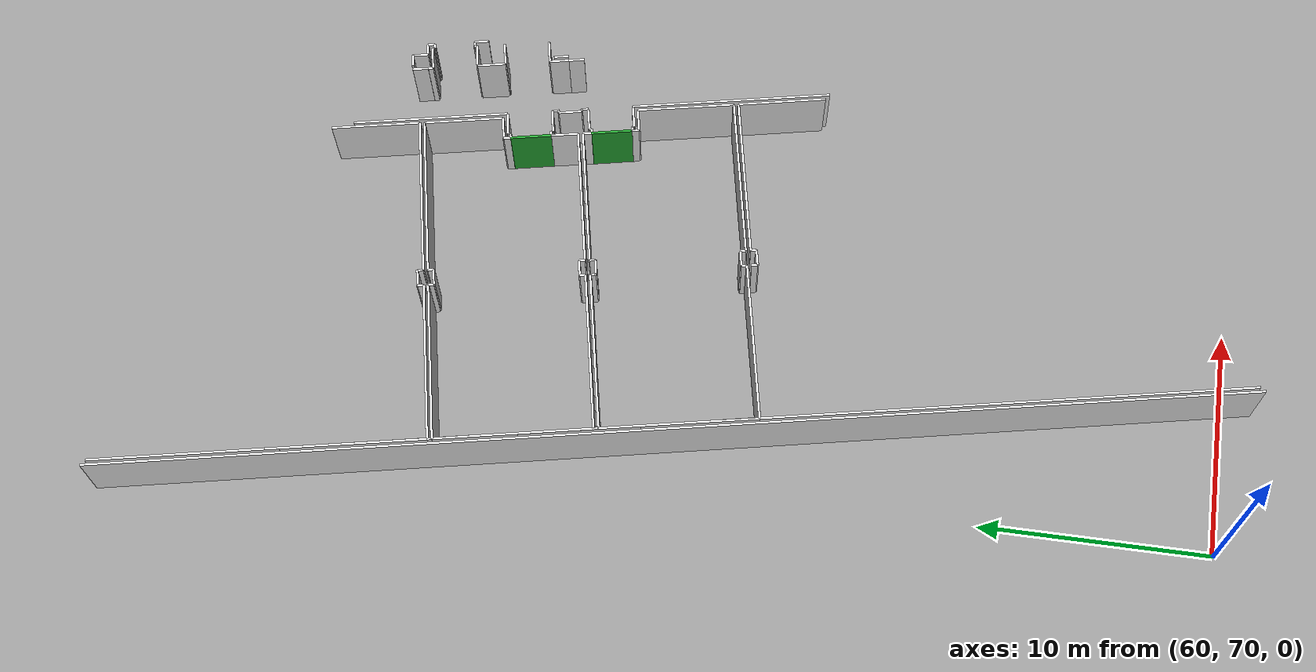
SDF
<sdf version="1.6">
 <world name="default">
  <model name="wall_74.4_101.3_1.5">
   <static>true</static>
   <pose>74.38000000000466 101.26000000000931 1.5 0 0 -1.3690339825092397</pose>
   <link name="link">
    <visual name="visual">
     <geometry><box><size>1.796440926065282 0.1 3</size></box></geometry>
     <material>
      <script><uri>file://media/materials/scripts/gazebo.material</uri><name>Gazebo/Green</name></script>
     </material>
    </visual>
    <collision name="collision"><geometry><box><size>1.796440926065282 0.1 3</size></box></geometry></collision>
   </link>
  </model>
  <model name="wall_75.1_97.8_1.5">
   <static>true</static>
   <pose>75.0800000000163 97.75 1.5 0 0 -1.3690339824572944</pose>
   <link name="link">
    <visual name="visual">
     <geometry><box><size>1.7964409256090668 0.1 3</size></box></geometry>
     <material>
      <script><uri>file://media/materials/scripts/gazebo.material</uri><name>Gazebo/Green</name></script>
     </material>
    </visual>
    <collision name="collision"><geometry><box><size>1.7964409256090668 0.1 3</size></box></geometry></collision>
   </link>
  </model>
  <model name="wall_59.2_106.7_1.5">
   <static>true</static>
   <pose>59.20999999999185 106.70499999984168 1.5 0 0 -1.3748471066906804</pose>
   <link name="link">
    <visual name="visual">
     <geometry><box><size>6.779741882902312 0.1 3</size></box></geometry>
     <material>
      <script><uri>file://media/materials/scripts/gazebo.material</uri><name>Gazebo/White</name></script>
     </material>
    </visual>
    <collision name="collision"><geometry><box><size>6.779741882902312 0.1 3</size></box></geometry></collision>
   </link>
  </model>
  <model name="wall_63.3_104.1_1.5">
   <static>true</static>
   <pose>63.304999999993015 104.05499999993481 1.5 0 0 0.19403422798469777</pose>
   <link name="link">
    <visual name="visual">
     <geometry><box><size>7.001385577168813 0.1 3</size></box></geometry>
     <material>
      <script><uri>file://media/materials/scripts/gazebo.material</uri><name>Gazebo/White</name></script>
     </material>
    </visual>
    <collision name="collision"><geometry><box><size>7.001385577168813 0.1 3</size></box></geometry></collision>
   </link>
  </model>
  <model name="wall_66.7_104.9_1.5">
   <static>true</static>
   <pose>66.71499999999651 104.85499999998137 1.5 0 0 1.7681918866000021</pose>
   <link name="link">
    <visual name="visual">
     <geometry><box><size>0.25495097567735614 0.1 3</size></box></geometry>
     <material>
      <script><uri>file://media/materials/scripts/gazebo.material</uri><name>Gazebo/White</name></script>
     </material>
    </visual>
    <collision name="collision"><geometry><box><size>0.25495097567735614 0.1 3</size></box></geometry></collision>
   </link>
  </model>
  <model name="wall_67.0_105.1_1.5">
   <static>true</static>
   <pose>67.03500000000349 105.05000000004657 1.5 0 0 0.20018106814672346</pose>
   <link name="link">
    <visual name="visual">
     <geometry><box><size>0.7040596565914858 0.1 3</size></box></geometry>
     <material>
      <script><uri>file://media/materials/scripts/gazebo.material</uri><name>Gazebo/White</name></script>
     </material>
    </visual>
    <collision name="collision"><geometry><box><size>0.7040596565914858 0.1 3</size></box></geometry></collision>
   </link>
  </model>
  <model name="wall_67.4_105.0_1.5">
   <static>true</static>
   <pose>67.40499999999884 104.99500000011176 1.5 0 0 -1.373400766989791</pose>
   <link name="link">
    <visual name="visual">
     <geometry><box><size>0.25495097567735614 0.1 3</size></box></geometry>
     <material>
      <script><uri>file://media/materials/scripts/gazebo.material</uri><name>Gazebo/White</name></script>
     </material>
    </visual>
    <collision name="collision"><geometry><box><size>0.25495097567735614 0.1 3</size></box></geometry></collision>
   </link>
  </model>
  <model name="wall_70.9_105.6_1.5">
   <static>true</static>
   <pose>70.9199999999837 105.56000000005588 1.5 0 0 0.19519049174407682</pose>
   <link name="link">
    <visual name="visual">
     <geometry><box><size>7.115110680757645 0.1 3</size></box></geometry>
     <material>
      <script><uri>file://media/materials/scripts/gazebo.material</uri><name>Gazebo/White</name></script>
     </material>
    </visual>
    <collision name="collision"><geometry><box><size>7.115110680757645 0.1 3</size></box></geometry></collision>
   </link>
  </model>
  <model name="wall_74.0_108.2_1.5">
   <static>true</static>
   <pose>74.02999999999884 108.15500000002794 1.5 0 0 1.7676870911146996</pose>
   <link name="link">
    <visual name="visual">
     <geometry><box><size>3.8850611321253985 0.1 3</size></box></geometry>
     <material>
      <script><uri>file://media/materials/scripts/gazebo.material</uri><name>Gazebo/White</name></script>
     </material>
    </visual>
    <collision name="collision"><geometry><box><size>3.8850611321253985 0.1 3</size></box></geometry></collision>
   </link>
  </model>
  <model name="wall_74.2_102.3_1.5">
   <static>true</static>
   <pose>74.17500000001746 102.29000000003725 1.5 0 0 1.7359450042724507</pose>
   <link name="link">
    <visual name="visual">
     <geometry><box><size>0.30413812632926696 0.1 3</size></box></geometry>
     <material>
      <script><uri>file://media/materials/scripts/gazebo.material</uri><name>Gazebo/White</name></script>
     </material>
    </visual>
    <collision name="collision"><geometry><box><size>0.30413812632926696 0.1 3</size></box></geometry></collision>
   </link>
  </model>
  <model name="wall_74.6_102.5_1.5">
   <static>true</static>
   <pose>74.63500000000931 102.53499999991618 1.5 0 0 0.19342732666080192</pose>
   <link name="link">
    <visual name="visual">
     <geometry><box><size>0.9884331034139654 0.1 3</size></box></geometry>
     <material>
      <script><uri>file://media/materials/scripts/gazebo.material</uri><name>Gazebo/White</name></script>
     </material>
    </visual>
    <collision name="collision"><geometry><box><size>0.9884331034139654 0.1 3</size></box></geometry></collision>
   </link>
  </model>
  <model name="wall_74.8_104.3_1.5">
   <static>true</static>
   <pose>74.77999999999884 104.33999999985099 1.5 0 0 1.7670670277288347</pose>
   <link name="link">
    <visual name="visual">
     <geometry><box><size>3.4869470887125433 0.1 3</size></box></geometry>
     <material>
      <script><uri>file://media/materials/scripts/gazebo.material</uri><name>Gazebo/White</name></script>
     </material>
    </visual>
    <collision name="collision"><geometry><box><size>3.4869470887125433 0.1 3</size></box></geometry></collision>
   </link>
  </model>
  <model name="wall_71.0_105.4_1.5">
   <static>true</static>
   <pose>70.9549999999872 105.36499999999069 1.5 0 0 -2.9475101683600555</pose>
   <link name="link">
    <visual name="visual">
     <geometry><box><size>7.1033653995449395 0.1 3</size></box></geometry>
     <material>
      <script><uri>file://media/materials/scripts/gazebo.material</uri><name>Gazebo/White</name></script>
     </material>
    </visual>
    <collision name="collision"><geometry><box><size>7.1033653995449395 0.1 3</size></box></geometry></collision>
   </link>
  </model>
  <model name="wall_67.5_104.6_1.5">
   <static>true</static>
   <pose>67.49499999999534 104.55500000016764 1.5 0 0 -1.3734007667659154</pose>
   <link name="link">
    <visual name="visual">
     <geometry><box><size>0.2549509756887716 0.1 3</size></box></geometry>
     <material>
      <script><uri>file://media/materials/scripts/gazebo.material</uri><name>Gazebo/White</name></script>
     </material>
    </visual>
    <collision name="collision"><geometry><box><size>0.2549509756887716 0.1 3</size></box></geometry></collision>
   </link>
  </model>
  <model name="wall_67.2_104.4_1.5">
   <static>true</static>
   <pose>67.17500000001746 104.36499999999069 1.5 0 0 -2.9553698126839456</pose>
   <link name="link">
    <visual name="visual">
     <geometry><box><size>0.7021395873294909 0.1 3</size></box></geometry>
     <material>
      <script><uri>file://media/materials/scripts/gazebo.material</uri><name>Gazebo/White</name></script>
     </material>
    </visual>
    <collision name="collision"><geometry><box><size>0.7021395873294909 0.1 3</size></box></geometry></collision>
   </link>
  </model>
  <model name="wall_66.8_104.4_1.5">
   <static>true</static>
   <pose>66.80500000002212 104.4199999999255 1.5 0 0 1.7761917157522207</pose>
   <link name="link">
    <visual name="visual">
     <geometry><box><size>0.24515301365907008 0.1 3</size></box></geometry>
     <material>
      <script><uri>file://media/materials/scripts/gazebo.material</uri><name>Gazebo/White</name></script>
     </material>
    </visual>
    <collision name="collision"><geometry><box><size>0.24515301365907008 0.1 3</size></box></geometry></collision>
   </link>
  </model>
  <model name="wall_63.3_103.9_1.5">
   <static>true</static>
   <pose>63.345000000001164 103.86499999999069 1.5 0 0 -2.9475584256066987</pose>
   <link name="link">
    <visual name="visual">
     <geometry><box><size>7.001385577225929 0.1 3</size></box></geometry>
     <material>
      <script><uri>file://media/materials/scripts/gazebo.material</uri><name>Gazebo/White</name></script>
     </material>
    </visual>
    <collision name="collision"><geometry><box><size>7.001385577225929 0.1 3</size></box></geometry></collision>
   </link>
  </model>
  <model name="wall_60.6_99.9_1.5">
   <static>true</static>
   <pose>60.57499999998254 99.86999999987893 1.5 0 0 -1.3731111637109774</pose>
   <link name="link">
    <visual name="visual">
     <geometry><box><size>6.771890430431879 0.1 3</size></box></geometry>
     <material>
      <script><uri>file://media/materials/scripts/gazebo.material</uri><name>Gazebo/White</name></script>
     </material>
    </visual>
    <collision name="collision"><geometry><box><size>6.771890430431879 0.1 3</size></box></geometry></collision>
   </link>
  </model>
  <model name="wall_64.7_97.2_1.5">
   <static>true</static>
   <pose>64.67499999998836 97.2249999998603 1.5 0 0 0.19403422798469777</pose>
   <link name="link">
    <visual name="visual">
     <geometry><box><size>7.001385577168813 0.1 3</size></box></geometry>
     <material>
      <script><uri>file://media/materials/scripts/gazebo.material</uri><name>Gazebo/White</name></script>
     </material>
    </visual>
    <collision name="collision"><geometry><box><size>7.001385577168813 0.1 3</size></box></geometry></collision>
   </link>
  </model>
  <model name="wall_68.1_98.0_1.5">
   <static>true</static>
   <pose>68.08499999999185 98.02000000001863 1.5 0 0 1.7761917157522207</pose>
   <link name="link">
    <visual name="visual">
     <geometry><box><size>0.24515301365907008 0.1 3</size></box></geometry>
     <material>
      <script><uri>file://media/materials/scripts/gazebo.material</uri><name>Gazebo/White</name></script>
     </material>
    </visual>
    <collision name="collision"><geometry><box><size>0.24515301365907008 0.1 3</size></box></geometry></collision>
   </link>
  </model>
  <model name="wall_68.4_98.2_1.5">
   <static>true</static>
   <pose>68.40499999999884 98.20999999996275 1.5 0 0 0.20018106749853645</pose>
   <link name="link">
    <visual name="visual">
     <geometry><box><size>0.7040596564988906 0.1 3</size></box></geometry>
     <material>
      <script><uri>file://media/materials/scripts/gazebo.material</uri><name>Gazebo/White</name></script>
     </material>
    </visual>
    <collision name="collision"><geometry><box><size>0.7040596564988906 0.1 3</size></box></geometry></collision>
   </link>
  </model>
  <model name="wall_68.8_98.2_1.5">
   <static>true</static>
   <pose>68.76999999998952 98.15499999979511 1.5 0 0 -1.412141064690222</pose>
   <link name="link">
    <visual name="visual">
     <geometry><box><size>0.2531797780201326 0.1 3</size></box></geometry>
     <material>
      <script><uri>file://media/materials/scripts/gazebo.material</uri><name>Gazebo/White</name></script>
     </material>
    </visual>
    <collision name="collision"><geometry><box><size>0.2531797780201326 0.1 3</size></box></geometry></collision>
   </link>
  </model>
  <model name="wall_71.8_98.6_1.5">
   <static>true</static>
   <pose>71.78999999997905 98.625 1.5 0 0 0.1957924833792323</pose>
   <link name="link">
    <visual name="visual">
     <geometry><box><size>6.11687011477073 0.1 3</size></box></geometry>
     <material>
      <script><uri>file://media/materials/scripts/gazebo.material</uri><name>Gazebo/White</name></script>
     </material>
    </visual>
    <collision name="collision"><geometry><box><size>6.11687011477073 0.1 3</size></box></geometry></collision>
   </link>
  </model>
  <model name="wall_74.7_99.8_1.5">
   <static>true</static>
   <pose>74.67499999998836 99.80000000004657 1.5 0 0 1.76653351340899</pose>
   <link name="link">
    <visual name="visual">
     <geometry><box><size>1.1825819207381807 0.1 3</size></box></geometry>
     <material>
      <script><uri>file://media/materials/scripts/gazebo.material</uri><name>Gazebo/White</name></script>
     </material>
    </visual>
    <collision name="collision"><geometry><box><size>1.1825819207381807 0.1 3</size></box></geometry></collision>
   </link>
  </model>
  <model name="wall_74.9_98.8_1.5">
   <static>true</static>
   <pose>74.86500000001979 98.81999999983236 1.5 0 0 1.7529646373378367</pose>
   <link name="link">
    <visual name="visual">
     <geometry><box><size>0.3863935816185891 0.1 3</size></box></geometry>
     <material>
      <script><uri>file://media/materials/scripts/gazebo.material</uri><name>Gazebo/White</name></script>
     </material>
    </visual>
    <collision name="collision"><geometry><box><size>0.3863935816185891 0.1 3</size></box></geometry></collision>
   </link>
  </model>
  <model name="wall_71.8_98.4_1.5">
   <static>true</static>
   <pose>71.8300000000163 98.4199999999255 1.5 0 0 -2.947404266883771</pose>
   <link name="link">
    <visual name="visual">
     <geometry><box><size>6.114932542497641 0.1 3</size></box></geometry>
     <material>
      <script><uri>file://media/materials/scripts/gazebo.material</uri><name>Gazebo/White</name></script>
     </material>
    </visual>
    <collision name="collision"><geometry><box><size>6.114932542497641 0.1 3</size></box></geometry></collision>
   </link>
  </model>
  <model name="wall_68.9_97.7_1.5">
   <static>true</static>
   <pose>68.85500000001048 97.70999999996275 1.5 0 0 -1.3654009378375724</pose>
   <link name="link">
    <visual name="visual">
     <geometry><box><size>0.24515301365907008 0.1 3</size></box></geometry>
     <material>
      <script><uri>file://media/materials/scripts/gazebo.material</uri><name>Gazebo/White</name></script>
     </material>
    </visual>
    <collision name="collision"><geometry><box><size>0.24515301365907008 0.1 3</size></box></geometry></collision>
   </link>
  </model>
  <model name="wall_68.5_97.5_1.5">
   <static>true</static>
   <pose>68.54000000000815 97.52499999990687 1.5 0 0 -2.952695472868832</pose>
   <link name="link">
    <visual name="visual">
     <geometry><box><size>0.6923149571989928 0.1 3</size></box></geometry>
     <material>
      <script><uri>file://media/materials/scripts/gazebo.material</uri><name>Gazebo/White</name></script>
     </material>
    </visual>
    <collision name="collision"><geometry><box><size>0.6923149571989928 0.1 3</size></box></geometry></collision>
   </link>
  </model>
  <model name="wall_68.2_97.6_1.5">
   <static>true</static>
   <pose>68.17500000001746 97.5800000000745 1.5 0 0 1.7761917157522207</pose>
   <link name="link">
    <visual name="visual">
     <geometry><box><size>0.24515301365907008 0.1 3</size></box></geometry>
     <material>
      <script><uri>file://media/materials/scripts/gazebo.material</uri><name>Gazebo/White</name></script>
     </material>
    </visual>
    <collision name="collision"><geometry><box><size>0.24515301365907008 0.1 3</size></box></geometry></collision>
   </link>
  </model>
  <model name="wall_64.7_97.0_1.5">
   <static>true</static>
   <pose>64.71500000002561 97.02000000001863 1.5 0 0 -2.946157326410305</pose>
   <link name="link">
    <visual name="visual">
     <geometry><box><size>7.003320641013659 0.1 3</size></box></geometry>
     <material>
      <script><uri>file://media/materials/scripts/gazebo.material</uri><name>Gazebo/White</name></script>
     </material>
    </visual>
    <collision name="collision"><geometry><box><size>7.003320641013659 0.1 3</size></box></geometry></collision>
   </link>
  </model>
  <model name="wall_61.9_93.0_1.5">
   <static>true</static>
   <pose>61.94000000000233 93.02000000001863 1.5 0 0 -1.3745595149757288</pose>
   <link name="link">
    <visual name="visual">
     <geometry><box><size>6.769933529615509 0.1 3</size></box></geometry>
     <material>
      <script><uri>file://media/materials/scripts/gazebo.material</uri><name>Gazebo/White</name></script>
     </material>
    </visual>
    <collision name="collision"><geometry><box><size>6.769933529615509 0.1 3</size></box></geometry></collision>
   </link>
  </model>
  <model name="wall_66.0_90.4_1.5">
   <static>true</static>
   <pose>66.03499999997439 90.38000000012107 1.5 0 0 0.1954353271142626</pose>
   <link name="link">
    <visual name="visual">
     <geometry><box><size>7.0033206409232305 0.1 3</size></box></geometry>
     <material>
      <script><uri>file://media/materials/scripts/gazebo.material</uri><name>Gazebo/White</name></script>
     </material>
    </visual>
    <collision name="collision"><geometry><box><size>7.0033206409232305 0.1 3</size></box></geometry></collision>
   </link>
  </model>
  <model name="wall_69.4_91.2_1.5">
   <static>true</static>
   <pose>69.44999999998254 91.17999999993481 1.5 0 0 1.7359450042881825</pose>
   <link name="link">
    <visual name="visual">
     <geometry><box><size>0.2433105009696346 0.1 3</size></box></geometry>
     <material>
      <script><uri>file://media/materials/scripts/gazebo.material</uri><name>Gazebo/White</name></script>
     </material>
    </visual>
    <collision name="collision"><geometry><box><size>0.2433105009696346 0.1 3</size></box></geometry></collision>
   </link>
  </model>
  <model name="wall_69.8_91.4_1.5">
   <static>true</static>
   <pose>69.76999999998952 91.36499999999069 1.5 0 0 0.1888971813816114</pose>
   <link name="link">
    <visual name="visual">
     <geometry><box><size>0.6923149572864328 0.1 3</size></box></geometry>
     <material>
      <script><uri>file://media/materials/scripts/gazebo.material</uri><name>Gazebo/White</name></script>
     </material>
    </visual>
    <collision name="collision"><geometry><box><size>0.6923149572864328 0.1 3</size></box></geometry></collision>
   </link>
  </model>
  <model name="wall_70.1_91.3_1.5">
   <static>true</static>
   <pose>70.13499999998021 91.31000000005588 1.5 0 0 -1.3654009378375724</pose>
   <link name="link">
    <visual name="visual">
     <geometry><box><size>0.24515301365907008 0.1 3</size></box></geometry>
     <material>
      <script><uri>file://media/materials/scripts/gazebo.material</uri><name>Gazebo/White</name></script>
     </material>
    </visual>
    <collision name="collision"><geometry><box><size>0.24515301365907008 0.1 3</size></box></geometry></collision>
   </link>
  </model>
  <model name="wall_73.6_91.9_1.5">
   <static>true</static>
   <pose>73.64499999998952 91.87999999988824 1.5 0 0 0.1954634617685791</pose>
   <link name="link">
    <visual name="visual">
     <geometry><box><size>7.105300838114702 0.1 3</size></box></geometry>
     <material>
      <script><uri>file://media/materials/scripts/gazebo.material</uri><name>Gazebo/White</name></script>
     </material>
    </visual>
    <collision name="collision"><geometry><box><size>7.105300838114702 0.1 3</size></box></geometry></collision>
   </link>
  </model>
  <model name="wall_76.7_94.7_1.5">
   <static>true</static>
   <pose>76.71499999999651 94.6699999999255 1.5 0 0 1.765901464626056</pose>
   <link name="link">
    <visual name="visual">
     <geometry><box><size>4.281226459975188 0.1 3</size></box></geometry>
     <material>
      <script><uri>file://media/materials/scripts/gazebo.material</uri><name>Gazebo/White</name></script>
     </material>
    </visual>
    <collision name="collision"><geometry><box><size>4.281226459975188 0.1 3</size></box></geometry></collision>
   </link>
  </model>
  <model name="wall_75.8_96.7_1.5">
   <static>true</static>
   <pose>75.80999999999767 96.6699999999255 1.5 0 0 -2.9402755450289626</pose>
   <link name="link">
    <visual name="visual">
     <geometry><box><size>1.0001999800229942 0.1 3</size></box></geometry>
     <material>
      <script><uri>file://media/materials/scripts/gazebo.material</uri><name>Gazebo/White</name></script>
     </material>
    </visual>
    <collision name="collision"><geometry><box><size>1.0001999800229942 0.1 3</size></box></geometry></collision>
   </link>
  </model>
  <model name="wall_75.3_96.7_1.5">
   <static>true</static>
   <pose>75.29000000000815 96.71999999997206 1.5 0 0 1.7681918864582145</pose>
   <link name="link">
    <visual name="visual">
     <geometry><box><size>0.30594117108908153 0.1 3</size></box></geometry>
     <material>
      <script><uri>file://media/materials/scripts/gazebo.material</uri><name>Gazebo/White</name></script>
     </material>
    </visual>
    <collision name="collision"><geometry><box><size>0.30594117108908153 0.1 3</size></box></geometry></collision>
   </link>
  </model>
  <model name="wall_77.6_90.5_1.5">
   <static>true</static>
   <pose>77.55499999999302 90.46500000008382 1.5 0 0 1.7702100473778921</pose>
   <link name="link">
    <visual name="visual">
     <geometry><box><size>3.88702971437761 0.1 3</size></box></geometry>
     <material>
      <script><uri>file://media/materials/scripts/gazebo.material</uri><name>Gazebo/White</name></script>
     </material>
    </visual>
    <collision name="collision"><geometry><box><size>3.88702971437761 0.1 3</size></box></geometry></collision>
   </link>
  </model>
  <model name="wall_73.7_91.7_1.5">
   <static>true</static>
   <pose>73.68499999999767 91.68000000016764 1.5 0 0 -2.946129191819623</pose>
   <link name="link">
    <visual name="visual">
     <geometry><box><size>7.105300838057603 0.1 3</size></box></geometry>
     <material>
      <script><uri>file://media/materials/scripts/gazebo.material</uri><name>Gazebo/White</name></script>
     </material>
    </visual>
    <collision name="collision"><geometry><box><size>7.105300838057603 0.1 3</size></box></geometry></collision>
   </link>
  </model>
  <model name="wall_70.2_90.9_1.5">
   <static>true</static>
   <pose>70.22500000000582 90.87000000011176 1.5 0 0 -1.3654009378375724</pose>
   <link name="link">
    <visual name="visual">
     <geometry><box><size>0.24515301365907008 0.1 3</size></box></geometry>
     <material>
      <script><uri>file://media/materials/scripts/gazebo.material</uri><name>Gazebo/White</name></script>
     </material>
    </visual>
    <collision name="collision"><geometry><box><size>0.24515301365907008 0.1 3</size></box></geometry></collision>
   </link>
  </model>
  <model name="wall_69.9_90.7_1.5">
   <static>true</static>
   <pose>69.90499999999884 90.67999999993481 1.5 0 0 -2.9414115854430696</pose>
   <link name="link">
    <visual name="visual">
     <geometry><box><size>0.7040596565914858 0.1 3</size></box></geometry>
     <material>
      <script><uri>file://media/materials/scripts/gazebo.material</uri><name>Gazebo/White</name></script>
     </material>
    </visual>
    <collision name="collision"><geometry><box><size>0.7040596565914858 0.1 3</size></box></geometry></collision>
   </link>
  </model>
  <model name="wall_69.5_90.7_1.5">
   <static>true</static>
   <pose>69.53500000000349 90.73999999999069 1.5 0 0 1.7607846144977208</pose>
   <link name="link">
    <visual name="visual">
     <geometry><box><size>0.2647640461330629 0.1 3</size></box></geometry>
     <material>
      <script><uri>file://media/materials/scripts/gazebo.material</uri><name>Gazebo/White</name></script>
     </material>
    </visual>
    <collision name="collision"><geometry><box><size>0.2647640461330629 0.1 3</size></box></geometry></collision>
   </link>
  </model>
  <model name="wall_77.4_107.1_1.5">
   <static>true</static>
   <pose>77.44500000000698 107.0999999998603 1.5 0 0 0.2013171085608308</pose>
   <link name="link">
    <visual name="visual">
     <geometry><box><size>0.5000999900114971 0.1 3</size></box></geometry>
     <material>
      <script><uri>file://media/materials/scripts/gazebo.material</uri><name>Gazebo/White</name></script>
     </material>
    </visual>
    <collision name="collision"><geometry><box><size>0.5000999900114971 0.1 3</size></box></geometry></collision>
   </link>
  </model>
  <model name="wall_77.8_106.8_1.5">
   <static>true</static>
   <pose>77.76000000000931 106.81000000005588 1.5 0 0 -1.3677511094351602</pose>
   <link name="link">
    <visual name="visual">
     <geometry><box><size>0.6942621980193073 0.1 3</size></box></geometry>
     <material>
      <script><uri>file://media/materials/scripts/gazebo.material</uri><name>Gazebo/White</name></script>
     </material>
    </visual>
    <collision name="collision"><geometry><box><size>0.6942621980193073 0.1 3</size></box></geometry></collision>
   </link>
  </model>
  <model name="wall_78.1_106.5_1.5">
   <static>true</static>
   <pose>78.0800000000163 106.52000000001863 1.5 0 0 0.19739555913347878</pose>
   <link name="link">
    <visual name="visual">
     <geometry><box><size>0.5099019512862195 0.1 3</size></box></geometry>
     <material>
      <script><uri>file://media/materials/scripts/gazebo.material</uri><name>Gazebo/White</name></script>
     </material>
    </visual>
    <collision name="collision"><geometry><box><size>0.5099019512862195 0.1 3</size></box></geometry></collision>
   </link>
  </model>
  <model name="wall_78.4_106.4_1.5">
   <static>true</static>
   <pose>78.35500000001048 106.4199999999255 1.5 0 0 -1.4056476493173427</pose>
   <link name="link">
    <visual name="visual">
     <geometry><box><size>0.30413812632926696 0.1 3</size></box></geometry>
     <material>
      <script><uri>file://media/materials/scripts/gazebo.material</uri><name>Gazebo/White</name></script>
     </material>
    </visual>
    <collision name="collision"><geometry><box><size>0.30413812632926696 0.1 3</size></box></geometry></collision>
   </link>
  </model>
  <model name="wall_78.8_104.2_1.5">
   <static>true</static>
   <pose>78.79999999998836 104.19499999983236 1.5 0 0 -1.382574821464652</pose>
   <link name="link">
    <visual name="visual">
     <geometry><box><size>0.6413267496823023 0.1 3</size></box></geometry>
     <material>
      <script><uri>file://media/materials/scripts/gazebo.material</uri><name>Gazebo/White</name></script>
     </material>
    </visual>
    <collision name="collision"><geometry><box><size>0.6413267496823023 0.1 3</size></box></geometry></collision>
   </link>
  </model>
  <model name="wall_78.5_100.5_1.5">
   <static>true</static>
   <pose>78.50500000000466 100.53000000002794 1.5 0 0 -1.3703977730017727</pose>
   <link name="link">
    <visual name="visual">
     <geometry><box><size>0.6530696748189306 0.1 3</size></box></geometry>
     <material>
      <script><uri>file://media/materials/scripts/gazebo.material</uri><name>Gazebo/White</name></script>
     </material>
    </visual>
    <collision name="collision"><geometry><box><size>0.6530696748189306 0.1 3</size></box></geometry></collision>
   </link>
  </model>
  <model name="wall_77.3_92.7_1.5">
   <static>true</static>
   <pose>77.30999999999767 92.69999999995343 1.5 0 0 1.768191886639571</pose>
   <link name="link">
    <visual name="visual">
     <geometry><box><size>8.770313563465434 0.1 3</size></box></geometry>
     <material>
      <script><uri>file://media/materials/scripts/gazebo.material</uri><name>Gazebo/White</name></script>
     </material>
    </visual>
    <collision name="collision"><geometry><box><size>8.770313563465434 0.1 3</size></box></geometry></collision>
   </link>
  </model>
  <model name="wall_76.0_96.9_1.5">
   <static>true</static>
   <pose>75.95999999999185 96.90500000002794 1.5 0 0 -2.950090935182675</pose>
   <link name="link">
    <visual name="visual">
     <geometry><box><size>0.9982484660926583 0.1 3</size></box></geometry>
     <material>
      <script><uri>file://media/materials/scripts/gazebo.material</uri><name>Gazebo/White</name></script>
     </material>
    </visual>
    <collision name="collision"><geometry><box><size>0.9982484660926583 0.1 3</size></box></geometry></collision>
   </link>
  </model>
  <model name="wall_75.5_96.9_1.5">
   <static>true</static>
   <pose>75.45999999999185 96.85499999998137 1.5 0 0 1.789465272600359</pose>
   <link name="link">
    <visual name="visual">
     <geometry><box><size>0.0921954444188793 0.1 3</size></box></geometry>
     <material>
      <script><uri>file://media/materials/scripts/gazebo.material</uri><name>Gazebo/White</name></script>
     </material>
    </visual>
    <collision name="collision"><geometry><box><size>0.0921954444188793 0.1 3</size></box></geometry></collision>
   </link>
  </model>
  <model name="wall_75.4_96.9_1.5">
   <static>true</static>
   <pose>75.35500000001048 96.88500000000931 1.5 0 0 -2.9849907776618085</pose>
   <link name="link">
    <visual name="visual">
     <geometry><box><size>0.19235384058705793 0.1 3</size></box></geometry>
     <material>
      <script><uri>file://media/materials/scripts/gazebo.material</uri><name>Gazebo/White</name></script>
     </material>
    </visual>
    <collision name="collision"><geometry><box><size>0.19235384058705793 0.1 3</size></box></geometry></collision>
   </link>
  </model>
  <model name="wall_75.0_98.6_1.5">
   <static>true</static>
   <pose>75.0 98.64999999990687 1.5 0 0 0.1973955600737564</pose>
   <link name="link">
    <visual name="visual">
     <geometry><box><size>0.20396078050535543 0.1 3</size></box></geometry>
     <material>
      <script><uri>file://media/materials/scripts/gazebo.material</uri><name>Gazebo/White</name></script>
     </material>
    </visual>
    <collision name="collision"><geometry><box><size>0.20396078050535543 0.1 3</size></box></geometry></collision>
   </link>
  </model>
  <model name="wall_75.1_98.7_1.5">
   <static>true</static>
   <pose>75.09500000000116 98.71499999985099 1.5 0 0 1.6814535476138674</pose>
   <link name="link">
    <visual name="visual">
     <geometry><box><size>0.09055385122787446 0.1 3</size></box></geometry>
     <material>
      <script><uri>file://media/materials/scripts/gazebo.material</uri><name>Gazebo/White</name></script>
     </material>
    </visual>
    <collision name="collision"><geometry><box><size>0.09055385122787446 0.1 3</size></box></geometry></collision>
   </link>
  </model>
  <model name="wall_75.6_98.9_1.5">
   <static>true</static>
   <pose>75.57500000001164 98.85999999986961 1.5 0 0 0.20333608421816718</pose>
   <link name="link">
    <visual name="visual">
     <geometry><box><size>0.99040395799911 0.1 3</size></box></geometry>
     <material>
      <script><uri>file://media/materials/scripts/gazebo.material</uri><name>Gazebo/White</name></script>
     </material>
    </visual>
    <collision name="collision"><geometry><box><size>0.99040395799911 0.1 3</size></box></geometry></collision>
   </link>
  </model>
  <model name="wall_76.0_99.1_1.5">
   <static>true</static>
   <pose>76.02999999999884 99.10499999998137 1.5 0 0 1.7748143063542596</pose>
   <link name="link">
    <visual name="visual">
     <geometry><box><size>0.2961418579352255 0.1 3</size></box></geometry>
     <material>
      <script><uri>file://media/materials/scripts/gazebo.material</uri><name>Gazebo/White</name></script>
     </material>
    </visual>
    <collision name="collision"><geometry><box><size>0.2961418579352255 0.1 3</size></box></geometry></collision>
   </link>
  </model>
  <model name="wall_76.0_99.2_1.5">
   <static>true</static>
   <pose>75.9549999999872 99.23999999999069 1.5 0 0 -2.922923707578892</pose>
   <link name="link">
    <visual name="visual">
     <geometry><box><size>0.092195444601971 0.1 3</size></box></geometry>
     <material>
      <script><uri>file://media/materials/scripts/gazebo.material</uri><name>Gazebo/White</name></script>
     </material>
    </visual>
    <collision name="collision"><geometry><box><size>0.092195444601971 0.1 3</size></box></geometry></collision>
   </link>
  </model>
  <model name="wall_75.8_99.7_1.5">
   <static>true</static>
   <pose>75.80999999999767 99.71999999997206 1.5 0 0 1.7721134351276446</pose>
   <link name="link">
    <visual name="visual">
     <geometry><box><size>1.0001999799764374 0.1 3</size></box></geometry>
     <material>
      <script><uri>file://media/materials/scripts/gazebo.material</uri><name>Gazebo/White</name></script>
     </material>
    </visual>
    <collision name="collision"><geometry><box><size>1.0001999799764374 0.1 3</size></box></geometry></collision>
   </link>
  </model>
  <model name="wall_75.8_100.2_1.5">
   <static>true</static>
   <pose>75.76000000000931 100.21999999997206 1.5 0 0 0.1973955600737564</pose>
   <link name="link">
    <visual name="visual">
     <geometry><box><size>0.10198039025267772 0.1 3</size></box></geometry>
     <material>
      <script><uri>file://media/materials/scripts/gazebo.material</uri><name>Gazebo/White</name></script>
     </material>
    </visual>
    <collision name="collision"><geometry><box><size>0.10198039025267772 0.1 3</size></box></geometry></collision>
   </link>
  </model>
  <model name="wall_75.8_100.4_1.5">
   <static>true</static>
   <pose>75.77999999999884 100.375 1.5 0 0 1.7748143063542596</pose>
   <link name="link">
    <visual name="visual">
     <geometry><box><size>0.2961418579352255 0.1 3</size></box></geometry>
     <material>
      <script><uri>file://media/materials/scripts/gazebo.material</uri><name>Gazebo/White</name></script>
     </material>
    </visual>
    <collision name="collision"><geometry><box><size>0.2961418579352255 0.1 3</size></box></geometry></collision>
   </link>
  </model>
  <model name="wall_75.3_100.4_1.5">
   <static>true</static>
   <pose>75.26000000000931 100.42500000004657 1.5 0 0 -2.950090935171577</pose>
   <link name="link">
    <visual name="visual">
     <geometry><box><size>0.9982484660355146 0.1 3</size></box></geometry>
     <material>
      <script><uri>file://media/materials/scripts/gazebo.material</uri><name>Gazebo/White</name></script>
     </material>
    </visual>
    <collision name="collision"><geometry><box><size>0.9982484660355146 0.1 3</size></box></geometry></collision>
   </link>
  </model>
  <model name="wall_74.8_100.4_1.5">
   <static>true</static>
   <pose>74.76000000000931 100.375 1.5 0 0 1.7894652732166754</pose>
   <link name="link">
    <visual name="visual">
     <geometry><box><size>0.0921954444315063 0.1 3</size></box></geometry>
     <material>
      <script><uri>file://media/materials/scripts/gazebo.material</uri><name>Gazebo/White</name></script>
     </material>
    </visual>
    <collision name="collision"><geometry><box><size>0.0921954444315063 0.1 3</size></box></geometry></collision>
   </link>
  </model>
  <model name="wall_74.7_100.4_1.5">
   <static>true</static>
   <pose>74.65499999999884 100.39999999990687 1.5 0 0 -2.9340964269693144</pose>
   <link name="link">
    <visual name="visual">
     <geometry><box><size>0.19416487839942884 0.1 3</size></box></geometry>
     <material>
      <script><uri>file://media/materials/scripts/gazebo.material</uri><name>Gazebo/White</name></script>
     </material>
    </visual>
    <collision name="collision"><geometry><box><size>0.19416487839942884 0.1 3</size></box></geometry></collision>
   </link>
  </model>
  <model name="wall_74.3_102.2_1.5">
   <static>true</static>
   <pose>74.30000000001746 102.16000000014901 1.5 0 0 0.19739556001778746</pose>
   <link name="link">
    <visual name="visual">
     <geometry><box><size>0.20396078056243275 0.1 3</size></box></geometry>
     <material>
      <script><uri>file://media/materials/scripts/gazebo.material</uri><name>Gazebo/White</name></script>
     </material>
    </visual>
    <collision name="collision"><geometry><box><size>0.20396078056243275 0.1 3</size></box></geometry></collision>
   </link>
  </model>
  <model name="wall_74.4_102.2_1.5">
   <static>true</static>
   <pose>74.39000000001397 102.22999999998137 1.5 0 0 1.7681918875402798</pose>
   <link name="link">
    <visual name="visual">
     <geometry><box><size>0.10198038991021388 0.1 3</size></box></geometry>
     <material>
      <script><uri>file://media/materials/scripts/gazebo.material</uri><name>Gazebo/White</name></script>
     </material>
    </visual>
    <collision name="collision"><geometry><box><size>0.10198038991021388 0.1 3</size></box></geometry></collision>
   </link>
  </model>
  <model name="wall_74.9_102.4_1.5">
   <static>true</static>
   <pose>74.86999999999534 102.375 1.5 0 0 0.19150171887616704</pose>
   <link name="link">
    <visual name="visual">
     <geometry><box><size>0.9982484661241455 0.1 3</size></box></geometry>
     <material>
      <script><uri>file://media/materials/scripts/gazebo.material</uri><name>Gazebo/White</name></script>
     </material>
    </visual>
    <collision name="collision"><geometry><box><size>0.9982484661241455 0.1 3</size></box></geometry></collision>
   </link>
  </model>
  <model name="wall_74.7_105.8_1.5">
   <static>true</static>
   <pose>74.69500000000698 105.80000000004657 1.5 0 0 1.7679031196908237</pose>
   <link name="link">
    <visual name="visual">
     <geometry><box><size>6.791502042675887 0.1 3</size></box></geometry>
     <material>
      <script><uri>file://media/materials/scripts/gazebo.material</uri><name>Gazebo/White</name></script>
     </material>
    </visual>
    <collision name="collision"><geometry><box><size>6.791502042675887 0.1 3</size></box></geometry></collision>
   </link>
  </model>
  <model name="wall_77.1_106.7_1.5">
   <static>true</static>
   <pose>77.07500000001164 106.67999999993481 1.5 0 0 -1.3818991459561358</pose>
   <link name="link">
    <visual name="visual">
     <geometry><box><size>0.6923149573923696 0.1 3</size></box></geometry>
     <material>
      <script><uri>file://media/materials/scripts/gazebo.material</uri><name>Gazebo/White</name></script>
     </material>
    </visual>
    <collision name="collision"><geometry><box><size>0.6923149573923696 0.1 3</size></box></geometry></collision>
   </link>
  </model>
  <model name="wall_77.2_106.2_1.5">
   <static>true</static>
   <pose>77.16500000000815 106.23499999986961 1.5 0 0 -1.337053145938486</pose>
   <link name="link">
    <visual name="visual">
     <geometry><box><size>0.21587033141029277 0.1 3</size></box></geometry>
     <material>
      <script><uri>file://media/materials/scripts/gazebo.material</uri><name>Gazebo/White</name></script>
     </material>
    </visual>
    <collision name="collision"><geometry><box><size>0.21587033141029277 0.1 3</size></box></geometry></collision>
   </link>
  </model>
  <model name="wall_77.7_106.2_1.5">
   <static>true</static>
   <pose>77.67999999999302 106.22999999998137 1.5 0 0 0.2013171085608308</pose>
   <link name="link">
    <visual name="visual">
     <geometry><box><size>1.0001999800229942 0.1 3</size></box></geometry>
     <material>
      <script><uri>file://media/materials/scripts/gazebo.material</uri><name>Gazebo/White</name></script>
     </material>
    </visual>
    <collision name="collision"><geometry><box><size>1.0001999800229942 0.1 3</size></box></geometry></collision>
   </link>
  </model>
  <model name="wall_78.2_106.3_1.5">
   <static>true</static>
   <pose>78.17499999998836 106.28000000002794 1.5 0 0 -1.4711276743037347</pose>
   <link name="link">
    <visual name="visual">
     <geometry><box><size>0.10049875630480566 0.1 3</size></box></geometry>
     <material>
      <script><uri>file://media/materials/scripts/gazebo.material</uri><name>Gazebo/White</name></script>
     </material>
    </visual>
    <collision name="collision"><geometry><box><size>0.10049875630480566 0.1 3</size></box></geometry></collision>
   </link>
  </model>
  <model name="wall_78.3_106.2_1.5">
   <static>true</static>
   <pose>78.27999999999884 106.25 1.5 0 0 0.19739556001778746</pose>
   <link name="link">
    <visual name="visual">
     <geometry><box><size>0.20396078056243275 0.1 3</size></box></geometry>
     <material>
      <script><uri>file://media/materials/scripts/gazebo.material</uri><name>Gazebo/White</name></script>
     </material>
    </visual>
    <collision name="collision"><geometry><box><size>0.20396078056243275 0.1 3</size></box></geometry></collision>
   </link>
  </model>
  <model name="wall_78.6_104.5_1.5">
   <static>true</static>
   <pose>78.63500000000931 104.48999999999069 1.5 0 0 -2.9533711502210322</pose>
   <link name="link">
    <visual name="visual">
     <geometry><box><size>0.21377558314756415 0.1 3</size></box></geometry>
     <material>
      <script><uri>file://media/materials/scripts/gazebo.material</uri><name>Gazebo/White</name></script>
     </material>
    </visual>
    <collision name="collision"><geometry><box><size>0.21377558314756415 0.1 3</size></box></geometry></collision>
   </link>
  </model>
  <model name="wall_78.5_104.4_1.5">
   <static>true</static>
   <pose>78.54000000000815 104.42000000015832 1.5 0 0 -1.3734007675047049</pose>
   <link name="link">
    <visual name="visual">
     <geometry><box><size>0.10198039035541688 0.1 3</size></box></geometry>
     <material>
      <script><uri>file://media/materials/scripts/gazebo.material</uri><name>Gazebo/White</name></script>
     </material>
    </visual>
    <collision name="collision"><geometry><box><size>0.10198039035541688 0.1 3</size></box></geometry></collision>
   </link>
  </model>
  <model name="wall_78.1_104.3_1.5">
   <static>true</static>
   <pose>78.05999999999767 104.2750000001397 1.5 0 0 -2.950090935171577</pose>
   <link name="link">
    <visual name="visual">
     <geometry><box><size>0.9982484660355146 0.1 3</size></box></geometry>
     <material>
      <script><uri>file://media/materials/scripts/gazebo.material</uri><name>Gazebo/White</name></script>
     </material>
    </visual>
    <collision name="collision"><geometry><box><size>0.9982484660355146 0.1 3</size></box></geometry></collision>
   </link>
  </model>
  <model name="wall_77.7_103.6_1.5">
   <static>true</static>
   <pose>77.69500000000698 103.57000000006519 1.5 0 0 -1.3686763926784307</pose>
   <link name="link">
    <visual name="visual">
     <geometry><box><size>1.2453513562444674 0.1 3</size></box></geometry>
     <material>
      <script><uri>file://media/materials/scripts/gazebo.material</uri><name>Gazebo/White</name></script>
     </material>
    </visual>
    <collision name="collision"><geometry><box><size>1.2453513562444674 0.1 3</size></box></geometry></collision>
   </link>
  </model>
  <model name="wall_78.3_103.1_1.5">
   <static>true</static>
   <pose>78.30999999999767 103.05499999993481 1.5 0 0 0.19150171841821614</pose>
   <link name="link">
    <visual name="visual">
     <geometry><box><size>0.9982484660355146 0.1 3</size></box></geometry>
     <material>
      <script><uri>file://media/materials/scripts/gazebo.material</uri><name>Gazebo/White</name></script>
     </material>
    </visual>
    <collision name="collision"><geometry><box><size>0.9982484660355146 0.1 3</size></box></geometry></collision>
   </link>
  </model>
  <model name="wall_78.7_101.1_1.5">
   <static>true</static>
   <pose>78.69500000000698 101.10000000009313 1.5 0 0 -2.942255348424875</pose>
   <link name="link">
    <visual name="visual">
     <geometry><box><size>1.0100000000277551 0.1 3</size></box></geometry>
     <material>
      <script><uri>file://media/materials/scripts/gazebo.material</uri><name>Gazebo/White</name></script>
     </material>
    </visual>
    <collision name="collision"><geometry><box><size>1.0100000000277551 0.1 3</size></box></geometry></collision>
   </link>
  </model>
  <model name="wall_78.3_100.6_1.5">
   <static>true</static>
   <pose>78.28500000000349 100.58499999996275 1.5 0 0 -1.3687711704277956</pose>
   <link name="link">
    <visual name="visual">
     <geometry><box><size>0.8472307832687256 0.1 3</size></box></geometry>
     <material>
      <script><uri>file://media/materials/scripts/gazebo.material</uri><name>Gazebo/White</name></script>
     </material>
    </visual>
    <collision name="collision"><geometry><box><size>0.8472307832687256 0.1 3</size></box></geometry></collision>
   </link>
  </model>
  <model name="wall_78.4_99.8_1.5">
   <static>true</static>
   <pose>78.43499999999767 99.8300000000745 1.5 0 0 -1.3818991458298349</pose>
   <link name="link">
    <visual name="visual">
     <geometry><box><size>0.6923149569349915 0.1 3</size></box></geometry>
     <material>
      <script><uri>file://media/materials/scripts/gazebo.material</uri><name>Gazebo/White</name></script>
     </material>
    </visual>
    <collision name="collision"><geometry><box><size>0.6923149569349915 0.1 3</size></box></geometry></collision>
   </link>
  </model>
  <model name="wall_61.7_93.1_1.5">
   <static>true</static>
   <pose>61.72499999997672 93.08999999985099 1.5 0 0 -1.3737551674021267</pose>
   <link name="link">
    <visual name="visual">
     <geometry><box><size>49.803695645859904 0.1 3</size></box></geometry>
     <material>
      <script><uri>file://media/materials/scripts/gazebo.material</uri><name>Gazebo/White</name></script>
     </material>
    </visual>
    <collision name="collision"><geometry><box><size>49.803695645859904 0.1 3</size></box></geometry></collision>
   </link>
  </model>
  <model name="wall_61.9_93.1_1.5">
   <static>true</static>
   <pose>61.920000000012806 93.125 1.5 0 0 1.767596435957684</pose>
   <link name="link">
    <visual name="visual">
     <geometry><box><size>49.4036243611494 0.1 3</size></box></geometry>
     <material>
      <script><uri>file://media/materials/scripts/gazebo.material</uri><name>Gazebo/White</name></script>
     </material>
    </visual>
    <collision name="collision"><geometry><box><size>49.4036243611494 0.1 3</size></box></geometry></collision>
   </link>
  </model>
 </world>
</sdf>
